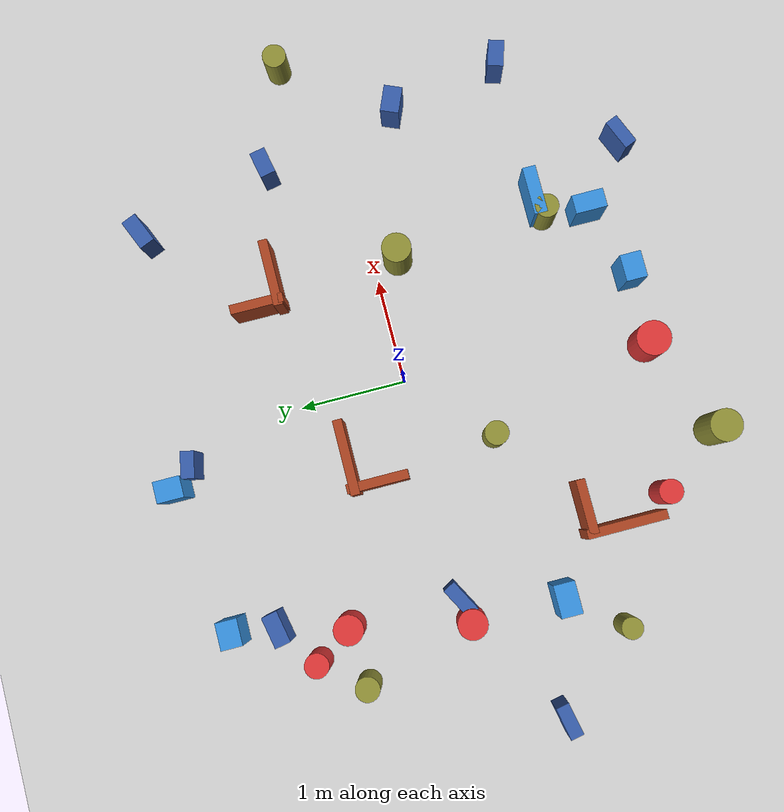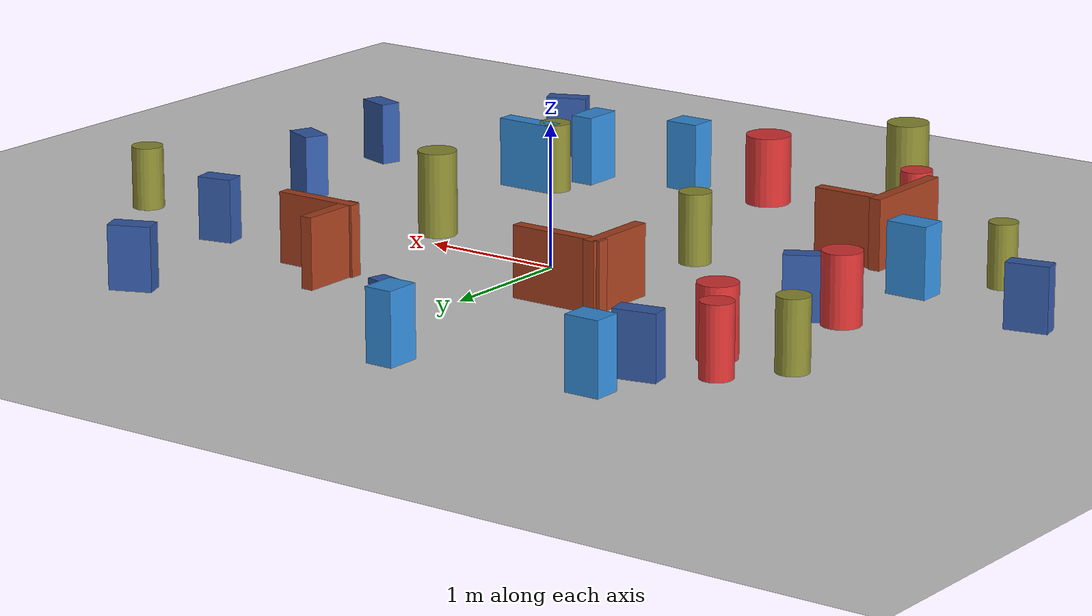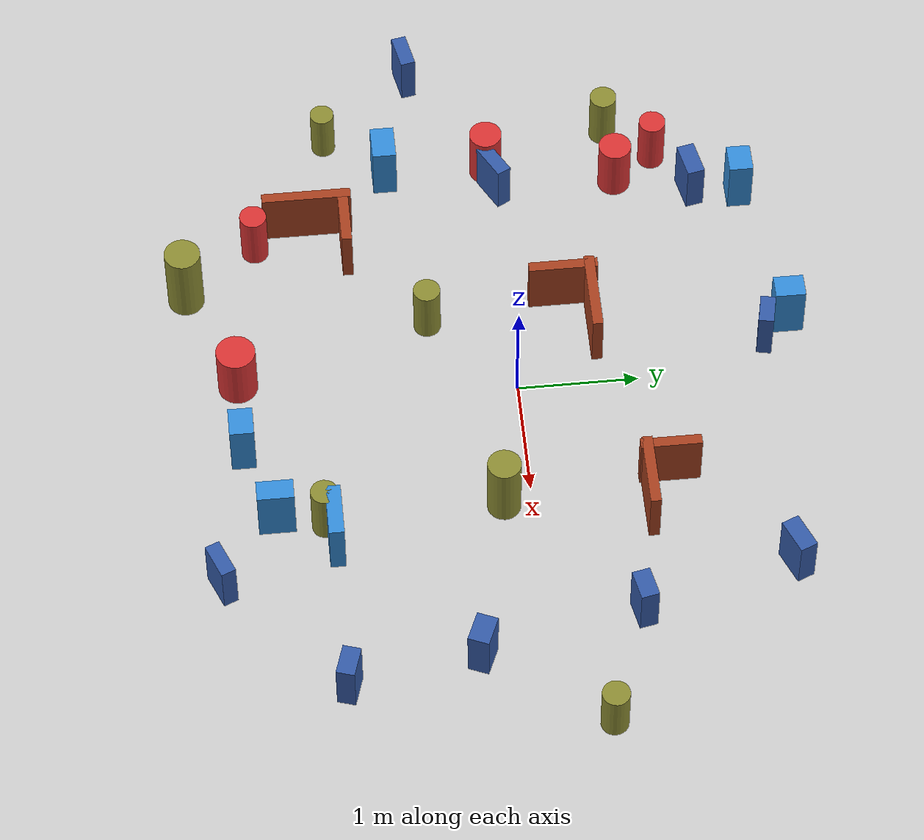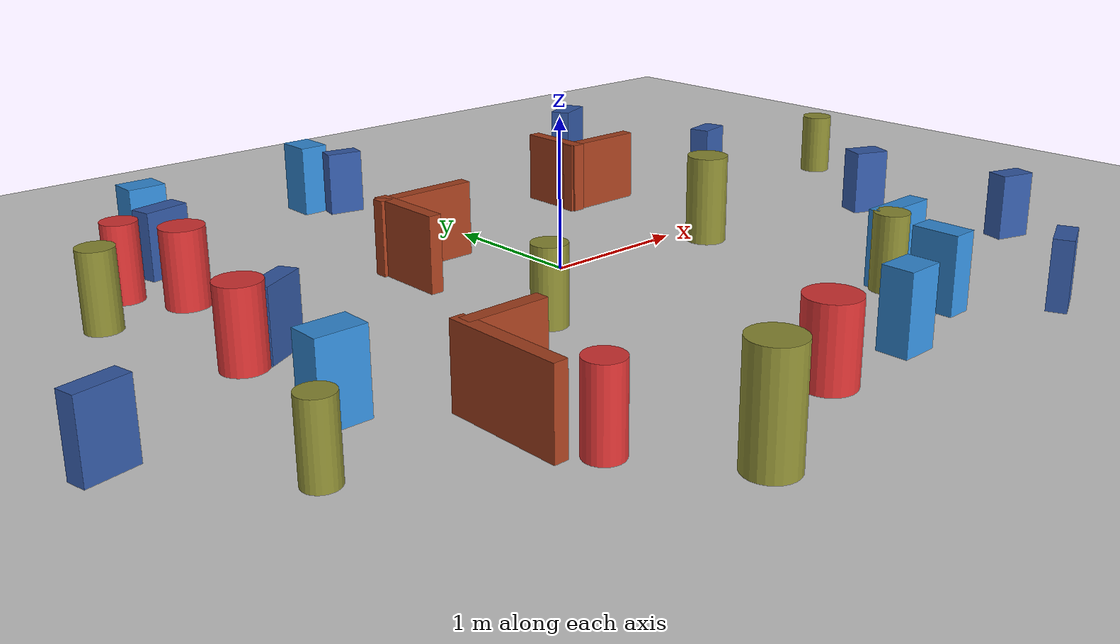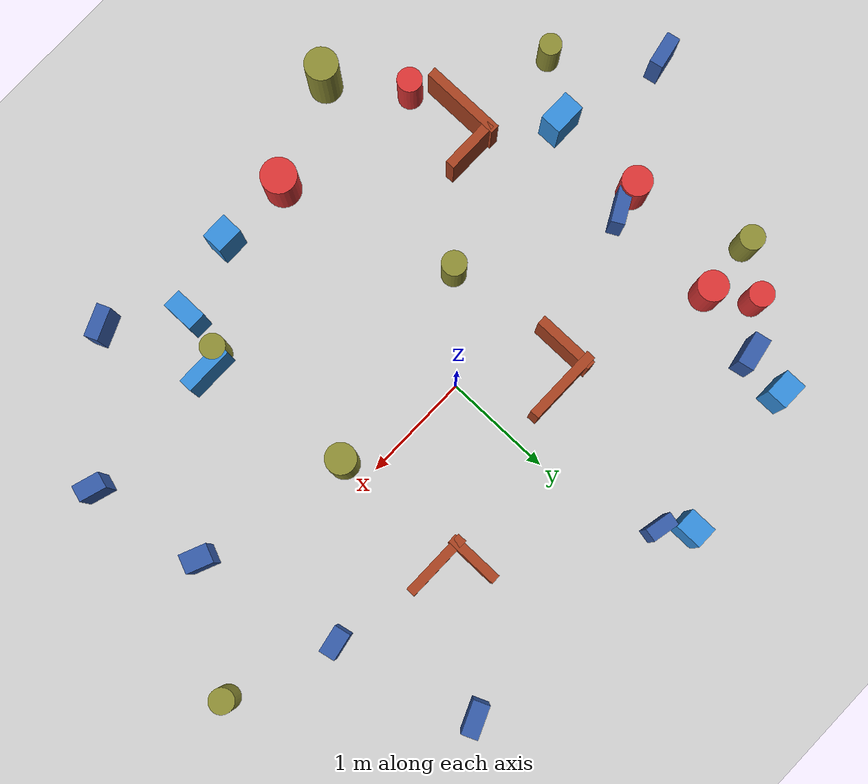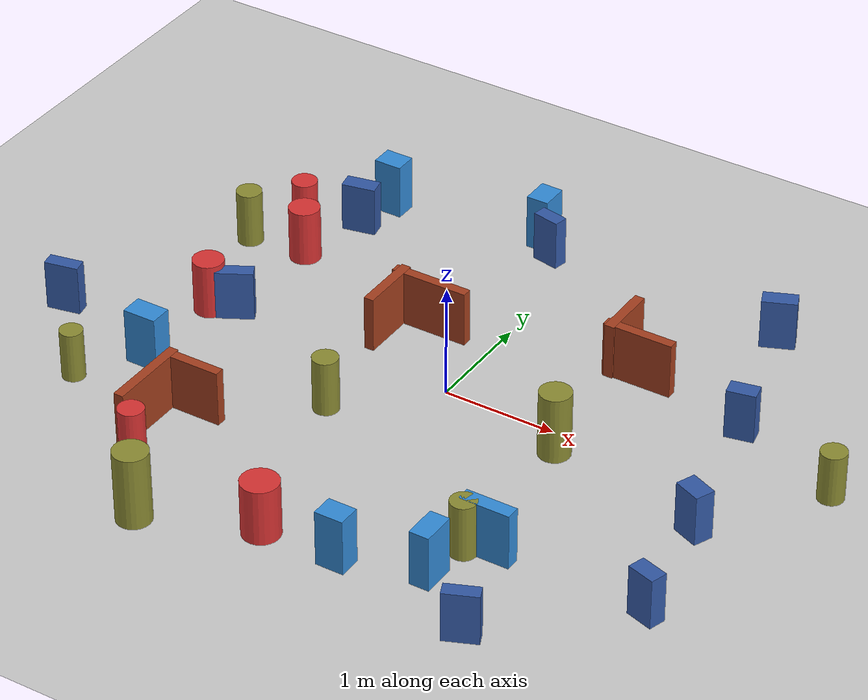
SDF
<sdf version="1.7">
  <world name="mixed_dynamic">
    <light name="sun" type="directional">
      <cast_shadows>1</cast_shadows>
      <pose>0 0 18 0 -0 0</pose>
      <diffuse>0.8 0.8 0.8 1</diffuse>
      <specular>0.2 0.2 0.2 1</specular>
      <attenuation>
        <range>1000</range>
        <constant>0.9</constant>
        <linear>0.01</linear>
        <quadratic>0.001</quadratic>
      </attenuation>
      <direction>-0.5 0.1 -0.9</direction>
      <spot>
        <inner_angle>0</inner_angle>
        <outer_angle>0</outer_angle>
        <falloff>0</falloff>
      </spot>
    </light>
    <model name="ground_plane">
      <static>1</static>
      <link name="link">
        <collision name="collision">
          <geometry>
            <plane>
              <normal>0 0 1</normal>
              <size>100 100</size>
            </plane>
          </geometry>
          <max_contacts>10</max_contacts>
          <surface>
            <contact>
              <ode/>
            </contact>
            <bounce/>
            <friction>
              <torsional>
                <ode/>
              </torsional>
              <ode/>
            </friction>
          </surface>
        </collision>
        <visual name="visual">
          <geometry>
            <plane>
              <normal>0 0 1</normal>
              <size>100 100</size>
            </plane>
          </geometry>
        </visual>
        <self_collide>0</self_collide>
        <enable_wind>0</enable_wind>
        <kinematic>0</kinematic>
      </link>
    </model>
    <gravity>0 0 -9.8</gravity>
    <physics type="ode">
      <max_step_size>0.001</max_step_size>
      <real_time_factor>1</real_time_factor>
      <real_time_update_rate>1000</real_time_update_rate>
    </physics>
    <scene>
      <ambient>0.4 0.4 0.4 1</ambient>
      <background>0.7 0.7 0.7 1</background>
      <shadows>1</shadows>
    </scene>
    <model name="d1_static_l_h">
      <static>1</static>
      <pose>-0.579786 0.68221 0.25 0 -0 0</pose>
      <link name="link">
        <collision name="collision">
          <geometry>
            <box>
              <size>0.7 0.0875 0.5</size>
            </box>
          </geometry>
          <max_contacts>10</max_contacts>
          <surface>
            <contact>
              <collide_without_contact>true</collide_without_contact>
              <ode/>
            </contact>
            <bounce/>
            <friction>
              <torsional>
                <ode/>
              </torsional>
              <ode/>
            </friction>
          </surface>
        </collision>
        <visual name="visual">
          <geometry>
            <box>
              <size>0.7 0.0875 0.5</size>
            </box>
          </geometry>
          <material>
            <ambient>0.65 0.25 0.12 1</ambient>
            <diffuse>0.65 0.25 0.12 1</diffuse>
          </material>
        </visual>
        <self_collide>0</self_collide>
        <enable_wind>0</enable_wind>
        <kinematic>0</kinematic>
      </link>
    </model>
    <model name="d1_static_l_v">
      <static>1</static>
      <pose>-0.861472 0.4623 0.25 0 -0 0</pose>
      <link name="link">
        <collision name="collision">
          <geometry>
            <box>
              <size>0.0875 0.575 0.5</size>
            </box>
          </geometry>
          <max_contacts>10</max_contacts>
          <surface>
            <contact>
              <collide_without_contact>true</collide_without_contact>
              <ode/>
            </contact>
            <bounce/>
            <friction>
              <torsional>
                <ode/>
              </torsional>
              <ode/>
            </friction>
          </surface>
        </collision>
        <visual name="visual">
          <geometry>
            <box>
              <size>0.0875 0.575 0.5</size>
            </box>
          </geometry>
          <material>
            <ambient>0.65 0.25 0.12 1</ambient>
            <diffuse>0.65 0.25 0.12 1</diffuse>
          </material>
        </visual>
        <self_collide>0</self_collide>
        <enable_wind>0</enable_wind>
        <kinematic>0</kinematic>
      </link>
    </model>
    <model name="d1_static_u_l">
      <static>1</static>
      <pose>0.98934 1.13564 0.25 0 -0 0</pose>
      <link name="link">
        <collision name="collision">
          <geometry>
            <box>
              <size>0.0875 0.5 0.5</size>
            </box>
          </geometry>
          <max_contacts>10</max_contacts>
          <surface>
            <contact>
              <collide_without_contact>true</collide_without_contact>
              <ode/>
            </contact>
            <bounce/>
            <friction>
              <torsional>
                <ode/>
              </torsional>
              <ode/>
            </friction>
          </surface>
        </collision>
        <visual name="visual">
          <geometry>
            <box>
              <size>0.0875 0.5 0.5</size>
            </box>
          </geometry>
          <material>
            <ambient>0.65 0.25 0.12 1</ambient>
            <diffuse>0.65 0.25 0.12 1</diffuse>
          </material>
        </visual>
        <self_collide>0</self_collide>
        <enable_wind>0</enable_wind>
        <kinematic>0</kinematic>
      </link>
    </model>
    <model name="d1_static_u_b">
      <static>1</static>
      <pose>1.23905 0.944684 0.25 0 -0 0</pose>
      <link name="link">
        <collision name="collision">
          <geometry>
            <box>
              <size>0.625 0.0875 0.5</size>
            </box>
          </geometry>
          <max_contacts>10</max_contacts>
          <surface>
            <contact>
              <collide_without_contact>true</collide_without_contact>
              <ode/>
            </contact>
            <bounce/>
            <friction>
              <torsional>
                <ode/>
              </torsional>
              <ode/>
            </friction>
          </surface>
        </collision>
        <visual name="visual">
          <geometry>
            <box>
              <size>0.625 0.0875 0.5</size>
            </box>
          </geometry>
          <material>
            <ambient>0.65 0.25 0.12 1</ambient>
            <diffuse>0.65 0.25 0.12 1</diffuse>
          </material>
        </visual>
        <self_collide>0</self_collide>
        <enable_wind>0</enable_wind>
        <kinematic>0</kinematic>
      </link>
    </model>
    <model name="d1_static_c_top">
      <static>1</static>
      <pose>-1.55114 -1.30391 0.25 0 -0 0</pose>
      <link name="link">
        <collision name="collision">
          <geometry>
            <box>
              <size>0.5 0.0875 0.5</size>
            </box>
          </geometry>
          <max_contacts>10</max_contacts>
          <surface>
            <contact>
              <collide_without_contact>true</collide_without_contact>
              <ode/>
            </contact>
            <bounce/>
            <friction>
              <torsional>
                <ode/>
              </torsional>
              <ode/>
            </friction>
          </surface>
        </collision>
        <visual name="visual">
          <geometry>
            <box>
              <size>0.5 0.0875 0.5</size>
            </box>
          </geometry>
          <material>
            <ambient>0.65 0.25 0.12 1</ambient>
            <diffuse>0.65 0.25 0.12 1</diffuse>
          </material>
        </visual>
        <self_collide>0</self_collide>
        <enable_wind>0</enable_wind>
        <kinematic>0</kinematic>
      </link>
    </model>
    <model name="d1_static_c_left">
      <static>1</static>
      <pose>-1.794 -1.61 0.25 0 -0 0</pose>
      <link name="link">
        <collision name="collision">
          <geometry>
            <box>
              <size>0.0875 0.75 0.5</size>
            </box>
          </geometry>
          <max_contacts>10</max_contacts>
          <surface>
            <contact>
              <collide_without_contact>true</collide_without_contact>
              <ode/>
            </contact>
            <bounce/>
            <friction>
              <torsional>
                <ode/>
              </torsional>
              <ode/>
            </friction>
          </surface>
        </collision>
        <visual name="visual">
          <geometry>
            <box>
              <size>0.0875 0.75 0.5</size>
            </box>
          </geometry>
          <material>
            <ambient>0.65 0.25 0.12 1</ambient>
            <diffuse>0.65 0.25 0.12 1</diffuse>
          </material>
        </visual>
        <self_collide>0</self_collide>
        <enable_wind>0</enable_wind>
        <kinematic>0</kinematic>
      </link>
    </model>
    <model name="d1_static_box_00">
      <static>1</static>
      <pose>-1.90911 1.66352 0.225 0 -0 0.2</pose>
      <link name="link">
        <collision name="collision">
          <geometry>
            <box>
              <size>0.3 0.15 0.45</size>
            </box>
          </geometry>
          <max_contacts>10</max_contacts>
          <surface>
            <contact>
              <collide_without_contact>true</collide_without_contact>
              <ode/>
            </contact>
            <bounce/>
            <friction>
              <torsional>
                <ode/>
              </torsional>
              <ode/>
            </friction>
          </surface>
        </collision>
        <visual name="visual">
          <geometry>
            <box>
              <size>0.3 0.15 0.45</size>
            </box>
          </geometry>
          <material>
            <ambient>0.2 0.35 0.65 1</ambient>
            <diffuse>0.2 0.35 0.65 1</diffuse>
          </material>
        </visual>
        <self_collide>0</self_collide>
        <enable_wind>0</enable_wind>
        <kinematic>0</kinematic>
      </link>
    </model>
    <model name="d1_static_box_03">
      <static>1</static>
      <pose>-0.281469 2.09306 0.225 0 0 -0.2</pose>
      <link name="link">
        <collision name="collision">
          <geometry>
            <box>
              <size>0.25 0.125 0.45</size>
            </box>
          </geometry>
          <max_contacts>10</max_contacts>
          <surface>
            <contact>
              <collide_without_contact>true</collide_without_contact>
              <ode/>
            </contact>
            <bounce/>
            <friction>
              <torsional>
                <ode/>
              </torsional>
              <ode/>
            </friction>
          </surface>
        </collision>
        <visual name="visual">
          <geometry>
            <box>
              <size>0.25 0.125 0.45</size>
            </box>
          </geometry>
          <material>
            <ambient>0.2 0.35 0.65 1</ambient>
            <diffuse>0.2 0.35 0.65 1</diffuse>
          </material>
        </visual>
        <self_collide>0</self_collide>
        <enable_wind>0</enable_wind>
        <kinematic>0</kinematic>
      </link>
    </model>
    <model name="d1_static_box_04">
      <static>1</static>
      <pose>1.93463 2.04511 0.225 0 -0 0.4</pose>
      <link name="link">
        <collision name="collision">
          <geometry>
            <box>
              <size>0.3 0.15 0.45</size>
            </box>
          </geometry>
          <max_contacts>10</max_contacts>
          <surface>
            <contact>
              <collide_without_contact>true</collide_without_contact>
              <ode/>
            </contact>
            <bounce/>
            <friction>
              <torsional>
                <ode/>
              </torsional>
              <ode/>
            </friction>
          </surface>
        </collision>
        <visual name="visual">
          <geometry>
            <box>
              <size>0.3 0.15 0.45</size>
            </box>
          </geometry>
          <material>
            <ambient>0.2 0.35 0.65 1</ambient>
            <diffuse>0.2 0.35 0.65 1</diffuse>
          </material>
        </visual>
        <self_collide>0</self_collide>
        <enable_wind>0</enable_wind>
        <kinematic>0</kinematic>
      </link>
    </model>
    <model name="d1_static_box_06">
      <static>1</static>
      <pose>2.28011 0.773709 0.225 0 -0 0.2</pose>
      <link name="link">
        <collision name="collision">
          <geometry>
            <box>
              <size>0.25 0.15 0.45</size>
            </box>
          </geometry>
          <max_contacts>10</max_contacts>
          <surface>
            <contact>
              <collide_without_contact>true</collide_without_contact>
              <ode/>
            </contact>
            <bounce/>
            <friction>
              <torsional>
                <ode/>
              </torsional>
              <ode/>
            </friction>
          </surface>
        </collision>
        <visual name="visual">
          <geometry>
            <box>
              <size>0.25 0.15 0.45</size>
            </box>
          </geometry>
          <material>
            <ambient>0.2 0.35 0.65 1</ambient>
            <diffuse>0.2 0.35 0.65 1</diffuse>
          </material>
        </visual>
        <self_collide>0</self_collide>
        <enable_wind>0</enable_wind>
        <kinematic>0</kinematic>
      </link>
    </model>
    <model name="d1_static_box_07">
      <static>1</static>
      <pose>-2.07 0 0.225 0 -0 0.5</pose>
      <link name="link">
        <collision name="collision">
          <geometry>
            <box>
              <size>0.325 0.125 0.45</size>
            </box>
          </geometry>
          <max_contacts>10</max_contacts>
          <surface>
            <contact>
              <collide_without_contact>true</collide_without_contact>
              <ode/>
            </contact>
            <bounce/>
            <friction>
              <torsional>
                <ode/>
              </torsional>
              <ode/>
            </friction>
          </surface>
        </collision>
        <visual name="visual">
          <geometry>
            <box>
              <size>0.325 0.125 0.45</size>
            </box>
          </geometry>
          <material>
            <ambient>0.2 0.35 0.65 1</ambient>
            <diffuse>0.2 0.35 0.65 1</diffuse>
          </material>
        </visual>
        <self_collide>0</self_collide>
        <enable_wind>0</enable_wind>
        <kinematic>0</kinematic>
      </link>
    </model>
    <model name="d1_static_box_08">
      <static>1</static>
      <pose>2.57335 -0.54041 0.225 0 0 -0.4</pose>
      <link name="link">
        <collision name="collision">
          <geometry>
            <box>
              <size>0.25 0.175 0.45</size>
            </box>
          </geometry>
          <max_contacts>10</max_contacts>
          <surface>
            <contact>
              <collide_without_contact>true</collide_without_contact>
              <ode/>
            </contact>
            <bounce/>
            <friction>
              <torsional>
                <ode/>
              </torsional>
              <ode/>
            </friction>
          </surface>
        </collision>
        <visual name="visual">
          <geometry>
            <box>
              <size>0.25 0.175 0.45</size>
            </box>
          </geometry>
          <material>
            <ambient>0.2 0.35 0.65 1</ambient>
            <diffuse>0.2 0.35 0.65 1</diffuse>
          </material>
        </visual>
        <self_collide>0</self_collide>
        <enable_wind>0</enable_wind>
        <kinematic>0</kinematic>
      </link>
    </model>
    <model name="d1_static_box_09">
      <static>1</static>
      <pose>-3.33144 -0.65993 0.225 0 -0 0.2</pose>
      <link name="link">
        <collision name="collision">
          <geometry>
            <box>
              <size>0.3 0.125 0.45</size>
            </box>
          </geometry>
          <max_contacts>10</max_contacts>
          <surface>
            <contact>
              <collide_without_contact>true</collide_without_contact>
              <ode/>
            </contact>
            <bounce/>
            <friction>
              <torsional>
                <ode/>
              </torsional>
              <ode/>
            </friction>
          </surface>
        </collision>
        <visual name="visual">
          <geometry>
            <box>
              <size>0.3 0.125 0.45</size>
            </box>
          </geometry>
          <material>
            <ambient>0.2 0.35 0.65 1</ambient>
            <diffuse>0.2 0.35 0.65 1</diffuse>
          </material>
        </visual>
        <self_collide>0</self_collide>
        <enable_wind>0</enable_wind>
        <kinematic>0</kinematic>
      </link>
    </model>
    <model name="d1_static_box_13">
      <static>1</static>
      <pose>1.72754 -2.54309 0.225 0 -0 0.4</pose>
      <link name="link">
        <collision name="collision">
          <geometry>
            <box>
              <size>0.3 0.125 0.45</size>
            </box>
          </geometry>
          <max_contacts>10</max_contacts>
          <surface>
            <contact>
              <collide_without_contact>true</collide_without_contact>
              <ode/>
            </contact>
            <bounce/>
            <friction>
              <torsional>
                <ode/>
              </torsional>
              <ode/>
            </friction>
          </surface>
        </collision>
        <visual name="visual">
          <geometry>
            <box>
              <size>0.3 0.125 0.45</size>
            </box>
          </geometry>
          <material>
            <ambient>0.2 0.35 0.65 1</ambient>
            <diffuse>0.2 0.35 0.65 1</diffuse>
          </material>
        </visual>
        <self_collide>0</self_collide>
        <enable_wind>0</enable_wind>
        <kinematic>0</kinematic>
      </link>
    </model>
    <model name="d1_static_box_14">
      <static>1</static>
      <pose>2.7615 -1.60719 0.225 0 0 -0.3</pose>
      <link name="link">
        <collision name="collision">
          <geometry>
            <box>
              <size>0.25 0.15 0.45</size>
            </box>
          </geometry>
          <max_contacts>10</max_contacts>
          <surface>
            <contact>
              <collide_without_contact>true</collide_without_contact>
              <ode/>
            </contact>
            <bounce/>
            <friction>
              <torsional>
                <ode/>
              </torsional>
              <ode/>
            </friction>
          </surface>
        </collision>
        <visual name="visual">
          <geometry>
            <box>
              <size>0.25 0.15 0.45</size>
            </box>
          </geometry>
          <material>
            <ambient>0.2 0.35 0.65 1</ambient>
            <diffuse>0.2 0.35 0.65 1</diffuse>
          </material>
        </visual>
        <self_collide>0</self_collide>
        <enable_wind>0</enable_wind>
        <kinematic>0</kinematic>
      </link>
    </model>
    <model name="d1_static_cylinder_00">
      <static>1</static>
      <pose>-2.60983 0.995284 0.25 0 -0 0</pose>
      <link name="link">
        <collision name="collision">
          <geometry>
            <cylinder>
              <radius>0.1125</radius>
              <length>0.5</length>
            </cylinder>
          </geometry>
          <max_contacts>10</max_contacts>
          <surface>
            <contact>
              <collide_without_contact>true</collide_without_contact>
              <ode/>
            </contact>
            <bounce/>
            <friction>
              <torsional>
                <ode/>
              </torsional>
              <ode/>
            </friction>
          </surface>
        </collision>
        <visual name="visual">
          <geometry>
            <cylinder>
              <radius>0.1125</radius>
              <length>0.5</length>
            </cylinder>
          </geometry>
          <material>
            <ambient>0.55 0.55 0.2 1</ambient>
            <diffuse>0.55 0.55 0.2 1</diffuse>
          </material>
        </visual>
        <self_collide>0</self_collide>
        <enable_wind>0</enable_wind>
        <kinematic>0</kinematic>
      </link>
    </model>
    <model name="d1_static_cylinder_05">
      <static>1</static>
      <pose>3.25721 0.426303 0.225 0 -0 0</pose>
      <link name="link">
        <collision name="collision">
          <geometry>
            <cylinder>
              <radius>0.1125</radius>
              <length>0.45</length>
            </cylinder>
          </geometry>
          <max_contacts>10</max_contacts>
          <surface>
            <contact>
              <collide_without_contact>true</collide_without_contact>
              <ode/>
            </contact>
            <bounce/>
            <friction>
              <torsional>
                <ode/>
              </torsional>
              <ode/>
            </friction>
          </surface>
        </collision>
        <visual name="visual">
          <geometry>
            <cylinder>
              <radius>0.1125</radius>
              <length>0.45</length>
            </cylinder>
          </geometry>
          <material>
            <ambient>0.55 0.55 0.2 1</ambient>
            <diffuse>0.55 0.55 0.2 1</diffuse>
          </material>
        </visual>
        <self_collide>0</self_collide>
        <enable_wind>0</enable_wind>
        <kinematic>0</kinematic>
      </link>
    </model>
    <model name="d1_static_cylinder_07">
      <static>1</static>
      <pose>-0.707376 -0.689455 0.25 0 -0 0</pose>
      <link name="link">
        <collision name="collision">
          <geometry>
            <cylinder>
              <radius>0.1125</radius>
              <length>0.5</length>
            </cylinder>
          </geometry>
          <max_contacts>10</max_contacts>
          <surface>
            <contact>
              <collide_without_contact>true</collide_without_contact>
              <ode/>
            </contact>
            <bounce/>
            <friction>
              <torsional>
                <ode/>
              </torsional>
              <ode/>
            </friction>
          </surface>
        </collision>
        <visual name="visual">
          <geometry>
            <cylinder>
              <radius>0.1125</radius>
              <length>0.5</length>
            </cylinder>
          </geometry>
          <material>
            <ambient>0.55 0.55 0.2 1</ambient>
            <diffuse>0.55 0.55 0.2 1</diffuse>
          </material>
        </visual>
        <self_collide>0</self_collide>
        <enable_wind>0</enable_wind>
        <kinematic>0</kinematic>
      </link>
    </model>
    <model name="d1_static_cylinder_08">
      <static>1</static>
      <pose>1.15 -0.23 0.3 0 -0 0</pose>
      <link name="link">
        <collision name="collision">
          <geometry>
            <cylinder>
              <radius>0.1375</radius>
              <length>0.6</length>
            </cylinder>
          </geometry>
          <max_contacts>10</max_contacts>
          <surface>
            <contact>
              <collide_without_contact>true</collide_without_contact>
              <ode/>
            </contact>
            <bounce/>
            <friction>
              <torsional>
                <ode/>
              </torsional>
              <ode/>
            </friction>
          </surface>
        </collision>
        <visual name="visual">
          <geometry>
            <cylinder>
              <radius>0.1375</radius>
              <length>0.6</length>
            </cylinder>
          </geometry>
          <material>
            <ambient>0.55 0.55 0.2 1</ambient>
            <diffuse>0.55 0.55 0.2 1</diffuse>
          </material>
        </visual>
        <self_collide>0</self_collide>
        <enable_wind>0</enable_wind>
        <kinematic>0</kinematic>
      </link>
    </model>
    <model name="d1_static_cylinder_09">
      <static>1</static>
      <pose>-2.69086 -1.41286 0.225 0 -0 0</pose>
      <link name="link">
        <collision name="collision">
          <geometry>
            <cylinder>
              <radius>0.1</radius>
              <length>0.45</length>
            </cylinder>
          </geometry>
          <max_contacts>10</max_contacts>
          <surface>
            <contact>
              <collide_without_contact>true</collide_without_contact>
              <ode/>
            </contact>
            <bounce/>
            <friction>
              <torsional>
                <ode/>
              </torsional>
              <ode/>
            </friction>
          </surface>
        </collision>
        <visual name="visual">
          <geometry>
            <cylinder>
              <radius>0.1</radius>
              <length>0.45</length>
            </cylinder>
          </geometry>
          <material>
            <ambient>0.55 0.55 0.2 1</ambient>
            <diffuse>0.55 0.55 0.2 1</diffuse>
          </material>
        </visual>
        <self_collide>0</self_collide>
        <enable_wind>0</enable_wind>
        <kinematic>0</kinematic>
      </link>
    </model>
    <model name="d1_static_cylinder_10">
      <static>1</static>
      <pose>-1.16051 -2.67718 0.325 0 -0 0</pose>
      <link name="link">
        <collision name="collision">
          <geometry>
            <cylinder>
              <radius>0.15</radius>
              <length>0.65</length>
            </cylinder>
          </geometry>
          <max_contacts>10</max_contacts>
          <surface>
            <contact>
              <collide_without_contact>true</collide_without_contact>
              <ode/>
            </contact>
            <bounce/>
            <friction>
              <torsional>
                <ode/>
              </torsional>
              <ode/>
            </friction>
          </surface>
        </collision>
        <visual name="visual">
          <geometry>
            <cylinder>
              <radius>0.15</radius>
              <length>0.65</length>
            </cylinder>
          </geometry>
          <material>
            <ambient>0.55 0.55 0.2 1</ambient>
            <diffuse>0.55 0.55 0.2 1</diffuse>
          </material>
        </visual>
        <self_collide>0</self_collide>
        <enable_wind>0</enable_wind>
        <kinematic>0</kinematic>
      </link>
    </model>
    <model name="d1_static_cylinder_11">
      <static>1</static>
      <pose>1.2075 -1.67971 0.25 0 -0 0</pose>
      <link name="link">
        <collision name="collision">
          <geometry>
            <cylinder>
              <radius>0.1125</radius>
              <length>0.5</length>
            </cylinder>
          </geometry>
          <max_contacts>10</max_contacts>
          <surface>
            <contact>
              <collide_without_contact>true</collide_without_contact>
              <ode/>
            </contact>
            <bounce/>
            <friction>
              <torsional>
                <ode/>
              </torsional>
              <ode/>
            </friction>
          </surface>
        </collision>
        <visual name="visual">
          <geometry>
            <cylinder>
              <radius>0.1125</radius>
              <length>0.5</length>
            </cylinder>
          </geometry>
          <material>
            <ambient>0.55 0.55 0.2 1</ambient>
            <diffuse>0.55 0.55 0.2 1</diffuse>
          </material>
        </visual>
        <self_collide>0</self_collide>
        <enable_wind>0</enable_wind>
        <kinematic>0</kinematic>
      </link>
    </model>
    <model name="d1_crossing_00">
      <static>0</static>
      <pose>-0.23 -2.3 0.25 0 -0 0</pose>
      <link name="link">
        <gravity>0</gravity>
        <kinematic>1</kinematic>
        <collision name="collision">
          <geometry>
            <cylinder>
              <radius>0.1625</radius>
              <length>0.5</length>
            </cylinder>
          </geometry>
          <max_contacts>10</max_contacts>
          <surface>
            <contact>
              <collide_without_contact>true</collide_without_contact>
              <ode/>
            </contact>
            <bounce/>
            <friction>
              <torsional>
                <ode/>
              </torsional>
              <ode/>
            </friction>
          </surface>
        </collision>
        <visual name="visual">
          <geometry>
            <cylinder>
              <radius>0.1625</radius>
              <length>0.5</length>
            </cylinder>
          </geometry>
          <material>
            <ambient>0.85 0.2 0.2 1</ambient>
            <diffuse>0.85 0.2 0.2 1</diffuse>
          </material>
        </visual>
        <self_collide>0</self_collide>
        <inertial>
          <pose>0 0 0 0 -0 0</pose>
          <inertia>
            <ixx>1</ixx>
            <ixy>0</ixy>
            <ixz>0</ixz>
            <iyy>1</iyy>
            <iyz>0</iyz>
            <izz>1</izz>
          </inertia>
          <mass>1</mass>
        </inertial>
        <enable_wind>0</enable_wind>
      </link>
      <plugin name="waypoint_motion" filename="libwaypointObstaclePlugin.so">
        <velocity>0.175</velocity>
        <loop>1</loop>
        <orientation>1</orientation>
        <angular_velocity>0.8</angular_velocity>
        <path>
          <waypoint>-0.230 -2.300 0.250</waypoint>
          <waypoint>-0.230 2.300 0.250</waypoint>
        </path>
        <anchor_to_model_pose>1</anchor_to_model_pose>
      </plugin>
    </model>
    <model name="d1_crossing_01">
      <static>0</static>
      <pose>0.46 -2.3 0.25 0 -0 0</pose>
      <link name="link">
        <gravity>0</gravity>
        <kinematic>1</kinematic>
        <collision name="collision">
          <geometry>
            <box>
              <size>0.25 0.2 0.5</size>
            </box>
          </geometry>
          <max_contacts>10</max_contacts>
          <surface>
            <contact>
              <collide_without_contact>true</collide_without_contact>
              <ode/>
            </contact>
            <bounce/>
            <friction>
              <torsional>
                <ode/>
              </torsional>
              <ode/>
            </friction>
          </surface>
        </collision>
        <visual name="visual">
          <geometry>
            <box>
              <size>0.25 0.2 0.5</size>
            </box>
          </geometry>
          <material>
            <ambient>0.2 0.55 0.85 1</ambient>
            <diffuse>0.2 0.55 0.85 1</diffuse>
          </material>
        </visual>
        <self_collide>0</self_collide>
        <inertial>
          <pose>0 0 0 0 -0 0</pose>
          <inertia>
            <ixx>1</ixx>
            <ixy>0</ixy>
            <ixz>0</ixz>
            <iyy>1</iyy>
            <iyz>0</iyz>
            <izz>1</izz>
          </inertia>
          <mass>1</mass>
        </inertial>
        <enable_wind>0</enable_wind>
      </link>
      <plugin name="waypoint_motion" filename="libwaypointObstaclePlugin.so">
        <velocity>0.19</velocity>
        <loop>1</loop>
        <orientation>1</orientation>
        <angular_velocity>0.8</angular_velocity>
        <path>
          <waypoint>0.460 -2.300 0.250</waypoint>
          <waypoint>0.460 2.300 0.250</waypoint>
        </path>
        <anchor_to_model_pose>1</anchor_to_model_pose>
      </plugin>
    </model>
    <model name="d1_crossing_02">
      <static>0</static>
      <pose>1.15 -2.07 0.25 0 -0 0</pose>
      <link name="link">
        <gravity>0</gravity>
        <kinematic>1</kinematic>
        <collision name="collision">
          <geometry>
            <box>
              <size>0.175 0.3 0.5</size>
            </box>
          </geometry>
          <max_contacts>10</max_contacts>
          <surface>
            <contact>
              <collide_without_contact>true</collide_without_contact>
              <ode/>
            </contact>
            <bounce/>
            <friction>
              <torsional>
                <ode/>
              </torsional>
              <ode/>
            </friction>
          </surface>
        </collision>
        <visual name="visual">
          <geometry>
            <box>
              <size>0.175 0.3 0.5</size>
            </box>
          </geometry>
          <material>
            <ambient>0.2 0.55 0.85 1</ambient>
            <diffuse>0.2 0.55 0.85 1</diffuse>
          </material>
        </visual>
        <self_collide>0</self_collide>
        <inertial>
          <pose>0 0 0 0 -0 0</pose>
          <inertia>
            <ixx>1</ixx>
            <ixy>0</ixy>
            <ixz>0</ixz>
            <iyy>1</iyy>
            <iyz>0</iyz>
            <izz>1</izz>
          </inertia>
          <mass>1</mass>
        </inertial>
        <enable_wind>0</enable_wind>
      </link>
      <plugin name="waypoint_motion" filename="libwaypointObstaclePlugin.so">
        <velocity>0.205</velocity>
        <loop>1</loop>
        <orientation>1</orientation>
        <angular_velocity>0.8</angular_velocity>
        <path>
          <waypoint>1.150 -2.070 0.250</waypoint>
          <waypoint>1.150 2.070 0.250</waypoint>
        </path>
        <anchor_to_model_pose>1</anchor_to_model_pose>
      </plugin>
    </model>
    <model name="d1_oncoming_00">
      <static>0</static>
      <pose>-2.3 -0.046 0.25 0 -0 0</pose>
      <link name="link">
        <gravity>0</gravity>
        <kinematic>1</kinematic>
        <collision name="collision">
          <geometry>
            <cylinder>
              <radius>0.1375</radius>
              <length>0.5</length>
            </cylinder>
          </geometry>
          <max_contacts>10</max_contacts>
          <surface>
            <contact>
              <collide_without_contact>true</collide_without_contact>
              <ode/>
            </contact>
            <bounce/>
            <friction>
              <torsional>
                <ode/>
              </torsional>
              <ode/>
            </friction>
          </surface>
        </collision>
        <visual name="visual">
          <geometry>
            <cylinder>
              <radius>0.1375</radius>
              <length>0.5</length>
            </cylinder>
          </geometry>
          <material>
            <ambient>0.85 0.2 0.2 1</ambient>
            <diffuse>0.85 0.2 0.2 1</diffuse>
          </material>
        </visual>
        <self_collide>0</self_collide>
        <inertial>
          <pose>0 0 0 0 -0 0</pose>
          <inertia>
            <ixx>1</ixx>
            <ixy>0</ixy>
            <ixz>0</ixz>
            <iyy>1</iyy>
            <iyz>0</iyz>
            <izz>1</izz>
          </inertia>
          <mass>1</mass>
        </inertial>
        <enable_wind>0</enable_wind>
      </link>
      <plugin name="waypoint_motion" filename="libwaypointObstaclePlugin.so">
        <velocity>0.22</velocity>
        <loop>1</loop>
        <orientation>1</orientation>
        <angular_velocity>0.8</angular_velocity>
        <path>
          <waypoint>-2.300 -0.046 0.250</waypoint>
          <waypoint>2.300 -0.046 0.250</waypoint>
        </path>
        <anchor_to_model_pose>1</anchor_to_model_pose>
      </plugin>
    </model>
    <model name="d1_same_direction_00">
      <static>0</static>
      <pose>-2.3 -0.92 0.25 0 -0 0</pose>
      <link name="link">
        <gravity>0</gravity>
        <kinematic>1</kinematic>
        <collision name="collision">
          <geometry>
            <box>
              <size>0.3 0.2 0.5</size>
            </box>
          </geometry>
          <max_contacts>10</max_contacts>
          <surface>
            <contact>
              <collide_without_contact>true</collide_without_contact>
              <ode/>
            </contact>
            <bounce/>
            <friction>
              <torsional>
                <ode/>
              </torsional>
              <ode/>
            </friction>
          </surface>
        </collision>
        <visual name="visual">
          <geometry>
            <box>
              <size>0.3 0.2 0.5</size>
            </box>
          </geometry>
          <material>
            <ambient>0.2 0.55 0.85 1</ambient>
            <diffuse>0.2 0.55 0.85 1</diffuse>
          </material>
        </visual>
        <self_collide>0</self_collide>
        <inertial>
          <pose>0 0 0 0 -0 0</pose>
          <inertia>
            <ixx>1</ixx>
            <ixy>0</ixy>
            <ixz>0</ixz>
            <iyy>1</iyy>
            <iyz>0</iyz>
            <izz>1</izz>
          </inertia>
          <mass>1</mass>
        </inertial>
        <enable_wind>0</enable_wind>
      </link>
      <plugin name="waypoint_motion" filename="libwaypointObstaclePlugin.so">
        <velocity>0.175</velocity>
        <loop>1</loop>
        <orientation>1</orientation>
        <angular_velocity>0.8</angular_velocity>
        <path>
          <waypoint>-2.300 -0.920 0.250</waypoint>
          <waypoint>2.300 -0.920 0.250</waypoint>
        </path>
        <anchor_to_model_pose>1</anchor_to_model_pose>
      </plugin>
    </model>
    <model name="d1_same_direction_01">
      <static>0</static>
      <pose>-2.07 1.035 0.25 0 -0 0</pose>
      <link name="link">
        <gravity>0</gravity>
        <kinematic>1</kinematic>
        <collision name="collision">
          <geometry>
            <cylinder>
              <radius>0.1375</radius>
              <length>0.5</length>
            </cylinder>
          </geometry>
          <max_contacts>10</max_contacts>
          <surface>
            <contact>
              <collide_without_contact>true</collide_without_contact>
              <ode/>
            </contact>
            <bounce/>
            <friction>
              <torsional>
                <ode/>
              </torsional>
              <ode/>
            </friction>
          </surface>
        </collision>
        <visual name="visual">
          <geometry>
            <cylinder>
              <radius>0.1375</radius>
              <length>0.5</length>
            </cylinder>
          </geometry>
          <material>
            <ambient>0.85 0.2 0.2 1</ambient>
            <diffuse>0.85 0.2 0.2 1</diffuse>
          </material>
        </visual>
        <self_collide>0</self_collide>
        <inertial>
          <pose>0 0 0 0 -0 0</pose>
          <inertia>
            <ixx>1</ixx>
            <ixy>0</ixy>
            <ixz>0</ixz>
            <iyy>1</iyy>
            <iyz>0</iyz>
            <izz>1</izz>
          </inertia>
          <mass>1</mass>
        </inertial>
        <enable_wind>0</enable_wind>
      </link>
      <plugin name="waypoint_motion" filename="libwaypointObstaclePlugin.so">
        <velocity>0.19</velocity>
        <loop>1</loop>
        <orientation>1</orientation>
        <angular_velocity>0.8</angular_velocity>
        <path>
          <waypoint>-2.070 1.035 0.250</waypoint>
          <waypoint>2.070 1.035 0.250</waypoint>
        </path>
        <anchor_to_model_pose>1</anchor_to_model_pose>
      </plugin>
    </model>
    <model name="d1_turning_01">
      <static>0</static>
      <pose>1.38 -1.61 0.25 0 -0 0</pose>
      <link name="link">
        <gravity>0</gravity>
        <kinematic>1</kinematic>
        <collision name="collision">
          <geometry>
            <box>
              <size>0.45 0.125 0.5</size>
            </box>
          </geometry>
          <max_contacts>10</max_contacts>
          <surface>
            <contact>
              <collide_without_contact>true</collide_without_contact>
              <ode/>
            </contact>
            <bounce/>
            <friction>
              <torsional>
                <ode/>
              </torsional>
              <ode/>
            </friction>
          </surface>
        </collision>
        <visual name="visual">
          <geometry>
            <box>
              <size>0.45 0.125 0.5</size>
            </box>
          </geometry>
          <material>
            <ambient>0.2 0.55 0.85 1</ambient>
            <diffuse>0.2 0.55 0.85 1</diffuse>
          </material>
        </visual>
        <self_collide>0</self_collide>
        <inertial>
          <pose>0 0 0 0 -0 0</pose>
          <inertia>
            <ixx>1</ixx>
            <ixy>0</ixy>
            <ixz>0</ixz>
            <iyy>1</iyy>
            <iyz>0</iyz>
            <izz>1</izz>
          </inertia>
          <mass>1</mass>
        </inertial>
        <enable_wind>0</enable_wind>
      </link>
      <plugin name="waypoint_motion" filename="libwaypointObstaclePlugin.so">
        <velocity>0.22</velocity>
        <loop>1</loop>
        <orientation>1</orientation>
        <angular_velocity>0.8</angular_velocity>
        <path>
          <waypoint>1.380 -1.610 0.250</waypoint>
          <waypoint>1.380 -0.690 0.250</waypoint>
          <waypoint>0.460 -0.690 0.250</waypoint>
          <waypoint>0.460 -1.610 0.250</waypoint>
        </path>
        <anchor_to_model_pose>1</anchor_to_model_pose>
      </plugin>
    </model>
    <model name="d1_stop_go_00">
      <static>0</static>
      <pose>-1.84 2.07 0.25 0 -0 0</pose>
      <link name="link">
        <gravity>0</gravity>
        <kinematic>1</kinematic>
        <collision name="collision">
          <geometry>
            <box>
              <size>0.25 0.2 0.5</size>
            </box>
          </geometry>
          <max_contacts>10</max_contacts>
          <surface>
            <contact>
              <collide_without_contact>true</collide_without_contact>
              <ode/>
            </contact>
            <bounce/>
            <friction>
              <torsional>
                <ode/>
              </torsional>
              <ode/>
            </friction>
          </surface>
        </collision>
        <visual name="visual">
          <geometry>
            <box>
              <size>0.25 0.2 0.5</size>
            </box>
          </geometry>
          <material>
            <ambient>0.2 0.55 0.85 1</ambient>
            <diffuse>0.2 0.55 0.85 1</diffuse>
          </material>
        </visual>
        <self_collide>0</self_collide>
        <inertial>
          <pose>0 0 0 0 -0 0</pose>
          <inertia>
            <ixx>1</ixx>
            <ixy>0</ixy>
            <ixz>0</ixz>
            <iyy>1</iyy>
            <iyz>0</iyz>
            <izz>1</izz>
          </inertia>
          <mass>1</mass>
        </inertial>
        <enable_wind>0</enable_wind>
      </link>
      <plugin name="waypoint_motion" filename="libwaypointObstaclePlugin.so">
        <velocity>0.19</velocity>
        <loop>1</loop>
        <orientation>1</orientation>
        <angular_velocity>0.8</angular_velocity>
        <path>
          <waypoint>-1.840 2.070 0.250</waypoint>
          <waypoint>1.840 2.070 0.250</waypoint>
        </path>
        <anchor_to_model_pose>1</anchor_to_model_pose>
      </plugin>
    </model>
    <model name="d1_stop_go_01">
      <static>0</static>
      <pose>-1.61 -2.07 0.25 0 -0 0</pose>
      <link name="link">
        <gravity>0</gravity>
        <kinematic>1</kinematic>
        <collision name="collision">
          <geometry>
            <cylinder>
              <radius>0.1125</radius>
              <length>0.5</length>
            </cylinder>
          </geometry>
          <max_contacts>10</max_contacts>
          <surface>
            <contact>
              <collide_without_contact>true</collide_without_contact>
              <ode/>
            </contact>
            <bounce/>
            <friction>
              <torsional>
                <ode/>
              </torsional>
              <ode/>
            </friction>
          </surface>
        </collision>
        <visual name="visual">
          <geometry>
            <cylinder>
              <radius>0.1125</radius>
              <length>0.5</length>
            </cylinder>
          </geometry>
          <material>
            <ambient>0.85 0.2 0.2 1</ambient>
            <diffuse>0.85 0.2 0.2 1</diffuse>
          </material>
        </visual>
        <self_collide>0</self_collide>
        <inertial>
          <pose>0 0 0 0 -0 0</pose>
          <inertia>
            <ixx>1</ixx>
            <ixy>0</ixy>
            <ixz>0</ixz>
            <iyy>1</iyy>
            <iyz>0</iyz>
            <izz>1</izz>
          </inertia>
          <mass>1</mass>
        </inertial>
        <enable_wind>0</enable_wind>
      </link>
      <plugin name="waypoint_motion" filename="libwaypointObstaclePlugin.so">
        <velocity>0.205</velocity>
        <loop>1</loop>
        <orientation>1</orientation>
        <angular_velocity>0.8</angular_velocity>
        <path>
          <waypoint>-1.610 -2.070 0.250</waypoint>
          <waypoint>1.610 -2.070 0.250</waypoint>
        </path>
        <anchor_to_model_pose>1</anchor_to_model_pose>
      </plugin>
    </model>
    <model name="d1_crossing_04">
      <static>0</static>
      <pose>-0.46 2.3 0.25 0 -0 0</pose>
      <link name="link">
        <gravity>0</gravity>
        <kinematic>1</kinematic>
        <collision name="collision">
          <geometry>
            <box>
              <size>0.2 0.25 0.5</size>
            </box>
          </geometry>
          <max_contacts>10</max_contacts>
          <surface>
            <contact>
              <collide_without_contact>true</collide_without_contact>
              <ode/>
            </contact>
            <bounce/>
            <friction>
              <torsional>
                <ode/>
              </torsional>
              <ode/>
            </friction>
          </surface>
        </collision>
        <visual name="visual">
          <geometry>
            <box>
              <size>0.2 0.25 0.5</size>
            </box>
          </geometry>
          <material>
            <ambient>0.2 0.55 0.85 1</ambient>
            <diffuse>0.2 0.55 0.85 1</diffuse>
          </material>
        </visual>
        <self_collide>0</self_collide>
        <inertial>
          <pose>0 0 0 0 -0 0</pose>
          <inertia>
            <ixx>1</ixx>
            <ixy>0</ixy>
            <ixz>0</ixz>
            <iyy>1</iyy>
            <iyz>0</iyz>
            <izz>1</izz>
          </inertia>
          <mass>1</mass>
        </inertial>
        <enable_wind>0</enable_wind>
      </link>
      <plugin name="waypoint_motion" filename="libwaypointObstaclePlugin.so">
        <velocity>0.235</velocity>
        <loop>1</loop>
        <orientation>1</orientation>
        <angular_velocity>0.8</angular_velocity>
        <path>
          <waypoint>-0.460 2.300 0.250</waypoint>
          <waypoint>0.460 -2.300 0.250</waypoint>
        </path>
        <anchor_to_model_pose>1</anchor_to_model_pose>
      </plugin>
    </model>
    <model name="d1_same_direction_02">
      <static>0</static>
      <pose>-2.3 1.38 0.25 0 -0 0</pose>
      <link name="link">
        <gravity>0</gravity>
        <kinematic>1</kinematic>
        <collision name="collision">
          <geometry>
            <cylinder>
              <radius>0.1125</radius>
              <length>0.5</length>
            </cylinder>
          </geometry>
          <max_contacts>10</max_contacts>
          <surface>
            <contact>
              <collide_without_contact>true</collide_without_contact>
              <ode/>
            </contact>
            <bounce/>
            <friction>
              <torsional>
                <ode/>
              </torsional>
              <ode/>
            </friction>
          </surface>
        </collision>
        <visual name="visual">
          <geometry>
            <cylinder>
              <radius>0.1125</radius>
              <length>0.5</length>
            </cylinder>
          </geometry>
          <material>
            <ambient>0.85 0.2 0.2 1</ambient>
            <diffuse>0.85 0.2 0.2 1</diffuse>
          </material>
        </visual>
        <self_collide>0</self_collide>
        <inertial>
          <pose>0 0 0 0 -0 0</pose>
          <inertia>
            <ixx>1</ixx>
            <ixy>0</ixy>
            <ixz>0</ixz>
            <iyy>1</iyy>
            <iyz>0</iyz>
            <izz>1</izz>
          </inertia>
          <mass>1</mass>
        </inertial>
        <enable_wind>0</enable_wind>
      </link>
      <plugin name="waypoint_motion" filename="libwaypointObstaclePlugin.so">
        <velocity>0.175</velocity>
        <loop>1</loop>
        <orientation>1</orientation>
        <angular_velocity>0.8</angular_velocity>
        <path>
          <waypoint>-2.300 1.380 0.250</waypoint>
          <waypoint>2.300 1.380 0.250</waypoint>
        </path>
        <anchor_to_model_pose>1</anchor_to_model_pose>
      </plugin>
    </model>
    <magnetic_field>6e-06 2.3e-05 -4.2e-05</magnetic_field>
    <atmosphere type="adiabatic"/>
    <wind/>
    <spherical_coordinates>
      <surface_model>EARTH_WGS84</surface_model>
      <latitude_deg>0</latitude_deg>
      <longitude_deg>0</longitude_deg>
      <elevation>0</elevation>
      <heading_deg>0</heading_deg>
    </spherical_coordinates>
    <gui fullscreen="0">
      <camera name="user_camera">
        <pose>-0.02 -3.2 11.8 0 1.3276 1.5762</pose>
        <view_controller>orbit</view_controller>
        <projection_type>perspective</projection_type>
      </camera>
    </gui>
  </world>
</sdf>
